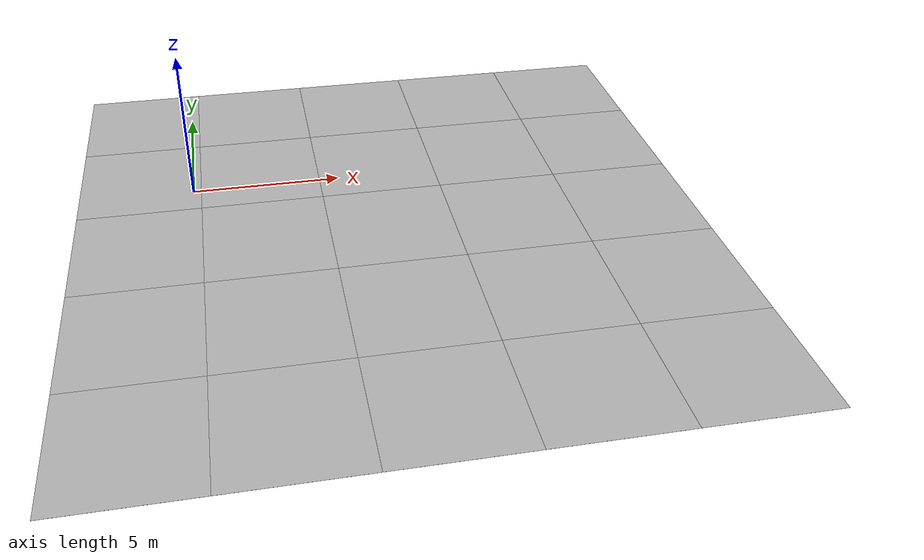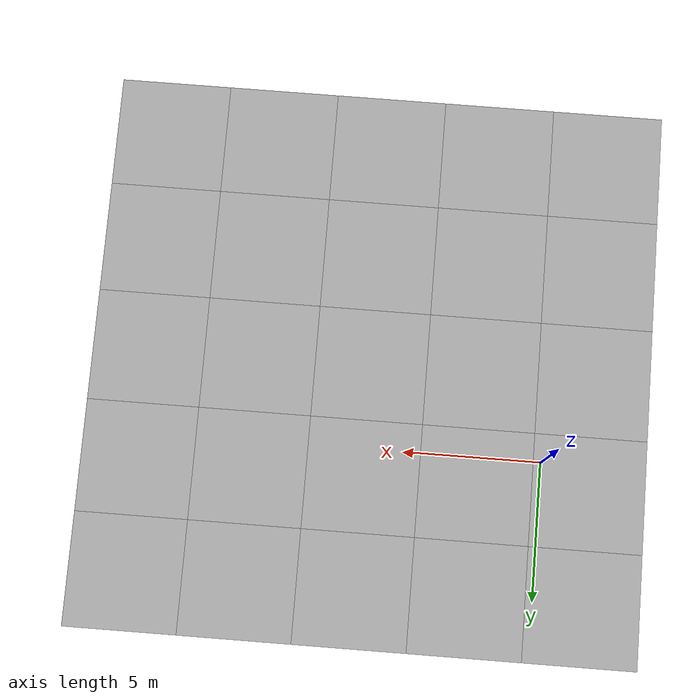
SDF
<sdf version='1.6'><world name='default'>
    <light name='sun_light' type='directional'>
      <pose frame=''>0 0 10 0 -0 0</pose>
      <diffuse>0.5 0.5 0.5 1</diffuse>
      <specular>0.1 0.1 0.1 1</specular>
      <direction>0.1 0.1 -0.9</direction>
      <attenuation>
        <range>20</range>
        <constant>0.5</constant>
        <linear>0.01</linear>
        <quadratic>0.001</quadratic>
      </attenuation>
      <cast_shadows>1</cast_shadows>
    </light>

    <model name='Tile/0-0'>
      <static>1</static>
      <link name='link'>
        <collision name='collision'>
          <geometry>
            <plane>
              <normal>0 0 1</normal>
              <size>4.096 4.096</size>
            </plane>
          </geometry>
          <surface>
            <friction>
              <ode>
                <mu>100</mu>
                <mu2>50</mu2>
              </ode>
              <torsional>
                <ode/>
              </torsional>
            </friction>
            <contact>
              <ode/>
            </contact>
            <bounce/>
          </surface>
          <max_contacts>10</max_contacts>
        </collision>
        <visual name='visual'>
          <cast_shadows>0</cast_shadows>
          <geometry>
            <plane>
              <normal>0 0 1</normal>
              <size>4.096 4.096</size>
            </plane>
          </geometry>
          <material>
            <script>
              <uri>file://materials/scripts</uri>
              <uri>file://materials/textures</uri>
              <name>Tile/072ec27f9ecea70fb9e2486f4bf34065cae6b597642b0c277786eb5cd0bad4e3</name>
            </script>
          </material>
        </visual>
        <self_collide>0</self_collide>
        <enable_wind>0</enable_wind>
        <kinematic>0</kinematic>
      </link>
      <pose frame=''>-1.8000712113637278 -11.307955043852381 0 0 -0 0</pose>
    </model>

    <model name='Tile/0-1'>
      <static>1</static>
      <link name='link'>
        <collision name='collision'>
          <geometry>
            <plane>
              <normal>0 0 1</normal>
              <size>4.096 4.096</size>
            </plane>
          </geometry>
          <surface>
            <friction>
              <ode>
                <mu>100</mu>
                <mu2>50</mu2>
              </ode>
              <torsional>
                <ode/>
              </torsional>
            </friction>
            <contact>
              <ode/>
            </contact>
            <bounce/>
          </surface>
          <max_contacts>10</max_contacts>
        </collision>
        <visual name='visual'>
          <cast_shadows>0</cast_shadows>
          <geometry>
            <plane>
              <normal>0 0 1</normal>
              <size>4.096 4.096</size>
            </plane>
          </geometry>
          <material>
            <script>
              <uri>file://materials/scripts</uri>
              <uri>file://materials/textures</uri>
              <name>Tile/c95d5eb1a1798f0be488606386a763b0e7d9bd78def9d420cb6e8e247f93471b</name>
            </script>
          </material>
        </visual>
        <self_collide>0</self_collide>
        <enable_wind>0</enable_wind>
        <kinematic>0</kinematic>
      </link>
      <pose frame=''>-1.8000712113637278 -7.211955043852381 0 0 -0 0</pose>
    </model>

    <model name='Tile/0-2'>
      <static>1</static>
      <link name='link'>
        <collision name='collision'>
          <geometry>
            <plane>
              <normal>0 0 1</normal>
              <size>4.096 4.096</size>
            </plane>
          </geometry>
          <surface>
            <friction>
              <ode>
                <mu>100</mu>
                <mu2>50</mu2>
              </ode>
              <torsional>
                <ode/>
              </torsional>
            </friction>
            <contact>
              <ode/>
            </contact>
            <bounce/>
          </surface>
          <max_contacts>10</max_contacts>
        </collision>
        <visual name='visual'>
          <cast_shadows>0</cast_shadows>
          <geometry>
            <plane>
              <normal>0 0 1</normal>
              <size>4.096 4.096</size>
            </plane>
          </geometry>
          <material>
            <script>
              <uri>file://materials/scripts</uri>
              <uri>file://materials/textures</uri>
              <name>Tile/5eab350b8220ac9944dbdfa4ac3288c7c17e24c3bf5df0dfcf6173d64dae00a1</name>
            </script>
          </material>
        </visual>
        <self_collide>0</self_collide>
        <enable_wind>0</enable_wind>
        <kinematic>0</kinematic>
      </link>
      <pose frame=''>-1.8000712113637278 -3.115955043852381 0 0 -0 0</pose>
    </model>

    <model name='Tile/0-3'>
      <static>1</static>
      <link name='link'>
        <collision name='collision'>
          <geometry>
            <plane>
              <normal>0 0 1</normal>
              <size>4.096 4.096</size>
            </plane>
          </geometry>
          <surface>
            <friction>
              <ode>
                <mu>100</mu>
                <mu2>50</mu2>
              </ode>
              <torsional>
                <ode/>
              </torsional>
            </friction>
            <contact>
              <ode/>
            </contact>
            <bounce/>
          </surface>
          <max_contacts>10</max_contacts>
        </collision>
        <visual name='visual'>
          <cast_shadows>0</cast_shadows>
          <geometry>
            <plane>
              <normal>0 0 1</normal>
              <size>4.096 4.096</size>
            </plane>
          </geometry>
          <material>
            <script>
              <uri>file://materials/scripts</uri>
              <uri>file://materials/textures</uri>
              <name>Tile/3a7c07fd8b1b702bf43c320c8d46b39815561e968275a6f08376126b703b282c</name>
            </script>
          </material>
        </visual>
        <self_collide>0</self_collide>
        <enable_wind>0</enable_wind>
        <kinematic>0</kinematic>
      </link>
      <pose frame=''>-1.8000712113637278 0.9800449561476192 0 0 -0 0</pose>
    </model>

    <model name='Tile/0-4'>
      <static>1</static>
      <link name='link'>
        <collision name='collision'>
          <geometry>
            <plane>
              <normal>0 0 1</normal>
              <size>4.096 4.096</size>
            </plane>
          </geometry>
          <surface>
            <friction>
              <ode>
                <mu>100</mu>
                <mu2>50</mu2>
              </ode>
              <torsional>
                <ode/>
              </torsional>
            </friction>
            <contact>
              <ode/>
            </contact>
            <bounce/>
          </surface>
          <max_contacts>10</max_contacts>
        </collision>
        <visual name='visual'>
          <cast_shadows>0</cast_shadows>
          <geometry>
            <plane>
              <normal>0 0 1</normal>
              <size>4.096 4.096</size>
            </plane>
          </geometry>
          <material>
            <script>
              <uri>file://materials/scripts</uri>
              <uri>file://materials/textures</uri>
              <name>Tile/5eab350b8220ac9944dbdfa4ac3288c7c17e24c3bf5df0dfcf6173d64dae00a1</name>
            </script>
          </material>
        </visual>
        <self_collide>0</self_collide>
        <enable_wind>0</enable_wind>
        <kinematic>0</kinematic>
      </link>
      <pose frame=''>-1.8000712113637278 5.0760449561476175 0 0 -0 0</pose>
    </model>

    <model name='Tile/1-0'>
      <static>1</static>
      <link name='link'>
        <collision name='collision'>
          <geometry>
            <plane>
              <normal>0 0 1</normal>
              <size>4.096 4.096</size>
            </plane>
          </geometry>
          <surface>
            <friction>
              <ode>
                <mu>100</mu>
                <mu2>50</mu2>
              </ode>
              <torsional>
                <ode/>
              </torsional>
            </friction>
            <contact>
              <ode/>
            </contact>
            <bounce/>
          </surface>
          <max_contacts>10</max_contacts>
        </collision>
        <visual name='visual'>
          <cast_shadows>0</cast_shadows>
          <geometry>
            <plane>
              <normal>0 0 1</normal>
              <size>4.096 4.096</size>
            </plane>
          </geometry>
          <material>
            <script>
              <uri>file://materials/scripts</uri>
              <uri>file://materials/textures</uri>
              <name>Tile/6b7b04169610d046843373cf26475524bd1b7b78969a8e19a1fbe6b6be9aef81</name>
            </script>
          </material>
        </visual>
        <self_collide>0</self_collide>
        <enable_wind>0</enable_wind>
        <kinematic>0</kinematic>
      </link>
      <pose frame=''>2.2959287886362723 -11.307955043852381 0 0 -0 0</pose>
    </model>

    <model name='Tile/1-1'>
      <static>1</static>
      <link name='link'>
        <collision name='collision'>
          <geometry>
            <plane>
              <normal>0 0 1</normal>
              <size>4.096 4.096</size>
            </plane>
          </geometry>
          <surface>
            <friction>
              <ode>
                <mu>100</mu>
                <mu2>50</mu2>
              </ode>
              <torsional>
                <ode/>
              </torsional>
            </friction>
            <contact>
              <ode/>
            </contact>
            <bounce/>
          </surface>
          <max_contacts>10</max_contacts>
        </collision>
        <visual name='visual'>
          <cast_shadows>0</cast_shadows>
          <geometry>
            <plane>
              <normal>0 0 1</normal>
              <size>4.096 4.096</size>
            </plane>
          </geometry>
          <material>
            <script>
              <uri>file://materials/scripts</uri>
              <uri>file://materials/textures</uri>
              <name>Tile/6ddd98cf42c539836bdbbbcb6a709c3cbc42868f0adacc0963ebfb97b51b85fd</name>
            </script>
          </material>
        </visual>
        <self_collide>0</self_collide>
        <enable_wind>0</enable_wind>
        <kinematic>0</kinematic>
      </link>
      <pose frame=''>2.2959287886362723 -7.211955043852381 0 0 -0 0</pose>
    </model>

    <model name='Tile/1-2'>
      <static>1</static>
      <link name='link'>
        <collision name='collision'>
          <geometry>
            <plane>
              <normal>0 0 1</normal>
              <size>4.096 4.096</size>
            </plane>
          </geometry>
          <surface>
            <friction>
              <ode>
                <mu>100</mu>
                <mu2>50</mu2>
              </ode>
              <torsional>
                <ode/>
              </torsional>
            </friction>
            <contact>
              <ode/>
            </contact>
            <bounce/>
          </surface>
          <max_contacts>10</max_contacts>
        </collision>
        <visual name='visual'>
          <cast_shadows>0</cast_shadows>
          <geometry>
            <plane>
              <normal>0 0 1</normal>
              <size>4.096 4.096</size>
            </plane>
          </geometry>
          <material>
            <script>
              <uri>file://materials/scripts</uri>
              <uri>file://materials/textures</uri>
              <name>Tile/2acf6c60863dd42c2a8be9334ebe5687081dbc240b0ca094d049ea6235ca0898</name>
            </script>
          </material>
        </visual>
        <self_collide>0</self_collide>
        <enable_wind>0</enable_wind>
        <kinematic>0</kinematic>
      </link>
      <pose frame=''>2.2959287886362723 -3.115955043852381 0 0 -0 0</pose>
    </model>

    <model name='Tile/1-3'>
      <static>1</static>
      <link name='link'>
        <collision name='collision'>
          <geometry>
            <plane>
              <normal>0 0 1</normal>
              <size>4.096 4.096</size>
            </plane>
          </geometry>
          <surface>
            <friction>
              <ode>
                <mu>100</mu>
                <mu2>50</mu2>
              </ode>
              <torsional>
                <ode/>
              </torsional>
            </friction>
            <contact>
              <ode/>
            </contact>
            <bounce/>
          </surface>
          <max_contacts>10</max_contacts>
        </collision>
        <visual name='visual'>
          <cast_shadows>0</cast_shadows>
          <geometry>
            <plane>
              <normal>0 0 1</normal>
              <size>4.096 4.096</size>
            </plane>
          </geometry>
          <material>
            <script>
              <uri>file://materials/scripts</uri>
              <uri>file://materials/textures</uri>
              <name>Tile/250c611df57e875cb2aa1c5bec24966ed7160cc04164ff5ce2abaedcc58d7f48</name>
            </script>
          </material>
        </visual>
        <self_collide>0</self_collide>
        <enable_wind>0</enable_wind>
        <kinematic>0</kinematic>
      </link>
      <pose frame=''>2.2959287886362723 0.9800449561476192 0 0 -0 0</pose>
    </model>

    <model name='Tile/1-4'>
      <static>1</static>
      <link name='link'>
        <collision name='collision'>
          <geometry>
            <plane>
              <normal>0 0 1</normal>
              <size>4.096 4.096</size>
            </plane>
          </geometry>
          <surface>
            <friction>
              <ode>
                <mu>100</mu>
                <mu2>50</mu2>
              </ode>
              <torsional>
                <ode/>
              </torsional>
            </friction>
            <contact>
              <ode/>
            </contact>
            <bounce/>
          </surface>
          <max_contacts>10</max_contacts>
        </collision>
        <visual name='visual'>
          <cast_shadows>0</cast_shadows>
          <geometry>
            <plane>
              <normal>0 0 1</normal>
              <size>4.096 4.096</size>
            </plane>
          </geometry>
          <material>
            <script>
              <uri>file://materials/scripts</uri>
              <uri>file://materials/textures</uri>
              <name>Tile/5eab350b8220ac9944dbdfa4ac3288c7c17e24c3bf5df0dfcf6173d64dae00a1</name>
            </script>
          </material>
        </visual>
        <self_collide>0</self_collide>
        <enable_wind>0</enable_wind>
        <kinematic>0</kinematic>
      </link>
      <pose frame=''>2.2959287886362723 5.0760449561476175 0 0 -0 0</pose>
    </model>

    <model name='Tile/2-0'>
      <static>1</static>
      <link name='link'>
        <collision name='collision'>
          <geometry>
            <plane>
              <normal>0 0 1</normal>
              <size>4.096 4.096</size>
            </plane>
          </geometry>
          <surface>
            <friction>
              <ode>
                <mu>100</mu>
                <mu2>50</mu2>
              </ode>
              <torsional>
                <ode/>
              </torsional>
            </friction>
            <contact>
              <ode/>
            </contact>
            <bounce/>
          </surface>
          <max_contacts>10</max_contacts>
        </collision>
        <visual name='visual'>
          <cast_shadows>0</cast_shadows>
          <geometry>
            <plane>
              <normal>0 0 1</normal>
              <size>4.096 4.096</size>
            </plane>
          </geometry>
          <material>
            <script>
              <uri>file://materials/scripts</uri>
              <uri>file://materials/textures</uri>
              <name>Tile/5eab350b8220ac9944dbdfa4ac3288c7c17e24c3bf5df0dfcf6173d64dae00a1</name>
            </script>
          </material>
        </visual>
        <self_collide>0</self_collide>
        <enable_wind>0</enable_wind>
        <kinematic>0</kinematic>
      </link>
      <pose frame=''>6.391928788636273 -11.307955043852381 0 0 -0 0</pose>
    </model>

    <model name='Tile/2-1'>
      <static>1</static>
      <link name='link'>
        <collision name='collision'>
          <geometry>
            <plane>
              <normal>0 0 1</normal>
              <size>4.096 4.096</size>
            </plane>
          </geometry>
          <surface>
            <friction>
              <ode>
                <mu>100</mu>
                <mu2>50</mu2>
              </ode>
              <torsional>
                <ode/>
              </torsional>
            </friction>
            <contact>
              <ode/>
            </contact>
            <bounce/>
          </surface>
          <max_contacts>10</max_contacts>
        </collision>
        <visual name='visual'>
          <cast_shadows>0</cast_shadows>
          <geometry>
            <plane>
              <normal>0 0 1</normal>
              <size>4.096 4.096</size>
            </plane>
          </geometry>
          <material>
            <script>
              <uri>file://materials/scripts</uri>
              <uri>file://materials/textures</uri>
              <name>Tile/fcdb32dc7b289d23e9188b8af5454dce1addc74b1884397d67e66c1f9bb37296</name>
            </script>
          </material>
        </visual>
        <self_collide>0</self_collide>
        <enable_wind>0</enable_wind>
        <kinematic>0</kinematic>
      </link>
      <pose frame=''>6.391928788636273 -7.211955043852381 0 0 -0 0</pose>
    </model>

    <model name='Tile/2-2'>
      <static>1</static>
      <link name='link'>
        <collision name='collision'>
          <geometry>
            <plane>
              <normal>0 0 1</normal>
              <size>4.096 4.096</size>
            </plane>
          </geometry>
          <surface>
            <friction>
              <ode>
                <mu>100</mu>
                <mu2>50</mu2>
              </ode>
              <torsional>
                <ode/>
              </torsional>
            </friction>
            <contact>
              <ode/>
            </contact>
            <bounce/>
          </surface>
          <max_contacts>10</max_contacts>
        </collision>
        <visual name='visual'>
          <cast_shadows>0</cast_shadows>
          <geometry>
            <plane>
              <normal>0 0 1</normal>
              <size>4.096 4.096</size>
            </plane>
          </geometry>
          <material>
            <script>
              <uri>file://materials/scripts</uri>
              <uri>file://materials/textures</uri>
              <name>Tile/bfa07c493a48ce49dfbb9dbe514d026b4dfb2b507d5f00aca3e34ab1c537a851</name>
            </script>
          </material>
        </visual>
        <self_collide>0</self_collide>
        <enable_wind>0</enable_wind>
        <kinematic>0</kinematic>
      </link>
      <pose frame=''>6.391928788636273 -3.115955043852381 0 0 -0 0</pose>
    </model>

    <model name='Tile/2-3'>
      <static>1</static>
      <link name='link'>
        <collision name='collision'>
          <geometry>
            <plane>
              <normal>0 0 1</normal>
              <size>4.096 4.096</size>
            </plane>
          </geometry>
          <surface>
            <friction>
              <ode>
                <mu>100</mu>
                <mu2>50</mu2>
              </ode>
              <torsional>
                <ode/>
              </torsional>
            </friction>
            <contact>
              <ode/>
            </contact>
            <bounce/>
          </surface>
          <max_contacts>10</max_contacts>
        </collision>
        <visual name='visual'>
          <cast_shadows>0</cast_shadows>
          <geometry>
            <plane>
              <normal>0 0 1</normal>
              <size>4.096 4.096</size>
            </plane>
          </geometry>
          <material>
            <script>
              <uri>file://materials/scripts</uri>
              <uri>file://materials/textures</uri>
              <name>Tile/5eab350b8220ac9944dbdfa4ac3288c7c17e24c3bf5df0dfcf6173d64dae00a1</name>
            </script>
          </material>
        </visual>
        <self_collide>0</self_collide>
        <enable_wind>0</enable_wind>
        <kinematic>0</kinematic>
      </link>
      <pose frame=''>6.391928788636273 0.9800449561476192 0 0 -0 0</pose>
    </model>

    <model name='Tile/2-4'>
      <static>1</static>
      <link name='link'>
        <collision name='collision'>
          <geometry>
            <plane>
              <normal>0 0 1</normal>
              <size>4.096 4.096</size>
            </plane>
          </geometry>
          <surface>
            <friction>
              <ode>
                <mu>100</mu>
                <mu2>50</mu2>
              </ode>
              <torsional>
                <ode/>
              </torsional>
            </friction>
            <contact>
              <ode/>
            </contact>
            <bounce/>
          </surface>
          <max_contacts>10</max_contacts>
        </collision>
        <visual name='visual'>
          <cast_shadows>0</cast_shadows>
          <geometry>
            <plane>
              <normal>0 0 1</normal>
              <size>4.096 4.096</size>
            </plane>
          </geometry>
          <material>
            <script>
              <uri>file://materials/scripts</uri>
              <uri>file://materials/textures</uri>
              <name>Tile/5eab350b8220ac9944dbdfa4ac3288c7c17e24c3bf5df0dfcf6173d64dae00a1</name>
            </script>
          </material>
        </visual>
        <self_collide>0</self_collide>
        <enable_wind>0</enable_wind>
        <kinematic>0</kinematic>
      </link>
      <pose frame=''>6.391928788636273 5.0760449561476175 0 0 -0 0</pose>
    </model>

    <model name='Tile/3-0'>
      <static>1</static>
      <link name='link'>
        <collision name='collision'>
          <geometry>
            <plane>
              <normal>0 0 1</normal>
              <size>4.096 4.096</size>
            </plane>
          </geometry>
          <surface>
            <friction>
              <ode>
                <mu>100</mu>
                <mu2>50</mu2>
              </ode>
              <torsional>
                <ode/>
              </torsional>
            </friction>
            <contact>
              <ode/>
            </contact>
            <bounce/>
          </surface>
          <max_contacts>10</max_contacts>
        </collision>
        <visual name='visual'>
          <cast_shadows>0</cast_shadows>
          <geometry>
            <plane>
              <normal>0 0 1</normal>
              <size>4.096 4.096</size>
            </plane>
          </geometry>
          <material>
            <script>
              <uri>file://materials/scripts</uri>
              <uri>file://materials/textures</uri>
              <name>Tile/5eab350b8220ac9944dbdfa4ac3288c7c17e24c3bf5df0dfcf6173d64dae00a1</name>
            </script>
          </material>
        </visual>
        <self_collide>0</self_collide>
        <enable_wind>0</enable_wind>
        <kinematic>0</kinematic>
      </link>
      <pose frame=''>10.487928788636273 -11.307955043852381 0 0 -0 0</pose>
    </model>

    <model name='Tile/3-1'>
      <static>1</static>
      <link name='link'>
        <collision name='collision'>
          <geometry>
            <plane>
              <normal>0 0 1</normal>
              <size>4.096 4.096</size>
            </plane>
          </geometry>
          <surface>
            <friction>
              <ode>
                <mu>100</mu>
                <mu2>50</mu2>
              </ode>
              <torsional>
                <ode/>
              </torsional>
            </friction>
            <contact>
              <ode/>
            </contact>
            <bounce/>
          </surface>
          <max_contacts>10</max_contacts>
        </collision>
        <visual name='visual'>
          <cast_shadows>0</cast_shadows>
          <geometry>
            <plane>
              <normal>0 0 1</normal>
              <size>4.096 4.096</size>
            </plane>
          </geometry>
          <material>
            <script>
              <uri>file://materials/scripts</uri>
              <uri>file://materials/textures</uri>
              <name>Tile/af4b180c03bfddc4beba77e1316b0d92dae5f35f7c55f3bab908a91573810bbf</name>
            </script>
          </material>
        </visual>
        <self_collide>0</self_collide>
        <enable_wind>0</enable_wind>
        <kinematic>0</kinematic>
      </link>
      <pose frame=''>10.487928788636273 -7.211955043852381 0 0 -0 0</pose>
    </model>

    <model name='Tile/3-2'>
      <static>1</static>
      <link name='link'>
        <collision name='collision'>
          <geometry>
            <plane>
              <normal>0 0 1</normal>
              <size>4.096 4.096</size>
            </plane>
          </geometry>
          <surface>
            <friction>
              <ode>
                <mu>100</mu>
                <mu2>50</mu2>
              </ode>
              <torsional>
                <ode/>
              </torsional>
            </friction>
            <contact>
              <ode/>
            </contact>
            <bounce/>
          </surface>
          <max_contacts>10</max_contacts>
        </collision>
        <visual name='visual'>
          <cast_shadows>0</cast_shadows>
          <geometry>
            <plane>
              <normal>0 0 1</normal>
              <size>4.096 4.096</size>
            </plane>
          </geometry>
          <material>
            <script>
              <uri>file://materials/scripts</uri>
              <uri>file://materials/textures</uri>
              <name>Tile/ff797563b60ef048d73f6d1be125db70e7f2db834698f0a68f245a350967c6cd</name>
            </script>
          </material>
        </visual>
        <self_collide>0</self_collide>
        <enable_wind>0</enable_wind>
        <kinematic>0</kinematic>
      </link>
      <pose frame=''>10.487928788636273 -3.115955043852381 0 0 -0 0</pose>
    </model>

    <model name='Tile/3-3'>
      <static>1</static>
      <link name='link'>
        <collision name='collision'>
          <geometry>
            <plane>
              <normal>0 0 1</normal>
              <size>4.096 4.096</size>
            </plane>
          </geometry>
          <surface>
            <friction>
              <ode>
                <mu>100</mu>
                <mu2>50</mu2>
              </ode>
              <torsional>
                <ode/>
              </torsional>
            </friction>
            <contact>
              <ode/>
            </contact>
            <bounce/>
          </surface>
          <max_contacts>10</max_contacts>
        </collision>
        <visual name='visual'>
          <cast_shadows>0</cast_shadows>
          <geometry>
            <plane>
              <normal>0 0 1</normal>
              <size>4.096 4.096</size>
            </plane>
          </geometry>
          <material>
            <script>
              <uri>file://materials/scripts</uri>
              <uri>file://materials/textures</uri>
              <name>Tile/5eab350b8220ac9944dbdfa4ac3288c7c17e24c3bf5df0dfcf6173d64dae00a1</name>
            </script>
          </material>
        </visual>
        <self_collide>0</self_collide>
        <enable_wind>0</enable_wind>
        <kinematic>0</kinematic>
      </link>
      <pose frame=''>10.487928788636273 0.9800449561476192 0 0 -0 0</pose>
    </model>

    <model name='Tile/3-4'>
      <static>1</static>
      <link name='link'>
        <collision name='collision'>
          <geometry>
            <plane>
              <normal>0 0 1</normal>
              <size>4.096 4.096</size>
            </plane>
          </geometry>
          <surface>
            <friction>
              <ode>
                <mu>100</mu>
                <mu2>50</mu2>
              </ode>
              <torsional>
                <ode/>
              </torsional>
            </friction>
            <contact>
              <ode/>
            </contact>
            <bounce/>
          </surface>
          <max_contacts>10</max_contacts>
        </collision>
        <visual name='visual'>
          <cast_shadows>0</cast_shadows>
          <geometry>
            <plane>
              <normal>0 0 1</normal>
              <size>4.096 4.096</size>
            </plane>
          </geometry>
          <material>
            <script>
              <uri>file://materials/scripts</uri>
              <uri>file://materials/textures</uri>
              <name>Tile/5eab350b8220ac9944dbdfa4ac3288c7c17e24c3bf5df0dfcf6173d64dae00a1</name>
            </script>
          </material>
        </visual>
        <self_collide>0</self_collide>
        <enable_wind>0</enable_wind>
        <kinematic>0</kinematic>
      </link>
      <pose frame=''>10.487928788636273 5.0760449561476175 0 0 -0 0</pose>
    </model>

    <model name='Tile/4-0'>
      <static>1</static>
      <link name='link'>
        <collision name='collision'>
          <geometry>
            <plane>
              <normal>0 0 1</normal>
              <size>4.096 4.096</size>
            </plane>
          </geometry>
          <surface>
            <friction>
              <ode>
                <mu>100</mu>
                <mu2>50</mu2>
              </ode>
              <torsional>
                <ode/>
              </torsional>
            </friction>
            <contact>
              <ode/>
            </contact>
            <bounce/>
          </surface>
          <max_contacts>10</max_contacts>
        </collision>
        <visual name='visual'>
          <cast_shadows>0</cast_shadows>
          <geometry>
            <plane>
              <normal>0 0 1</normal>
              <size>4.096 4.096</size>
            </plane>
          </geometry>
          <material>
            <script>
              <uri>file://materials/scripts</uri>
              <uri>file://materials/textures</uri>
              <name>Tile/5eab350b8220ac9944dbdfa4ac3288c7c17e24c3bf5df0dfcf6173d64dae00a1</name>
            </script>
          </material>
        </visual>
        <self_collide>0</self_collide>
        <enable_wind>0</enable_wind>
        <kinematic>0</kinematic>
      </link>
      <pose frame=''>14.583928788636271 -11.307955043852381 0 0 -0 0</pose>
    </model>

    <model name='Tile/4-1'>
      <static>1</static>
      <link name='link'>
        <collision name='collision'>
          <geometry>
            <plane>
              <normal>0 0 1</normal>
              <size>4.096 4.096</size>
            </plane>
          </geometry>
          <surface>
            <friction>
              <ode>
                <mu>100</mu>
                <mu2>50</mu2>
              </ode>
              <torsional>
                <ode/>
              </torsional>
            </friction>
            <contact>
              <ode/>
            </contact>
            <bounce/>
          </surface>
          <max_contacts>10</max_contacts>
        </collision>
        <visual name='visual'>
          <cast_shadows>0</cast_shadows>
          <geometry>
            <plane>
              <normal>0 0 1</normal>
              <size>4.096 4.096</size>
            </plane>
          </geometry>
          <material>
            <script>
              <uri>file://materials/scripts</uri>
              <uri>file://materials/textures</uri>
              <name>Tile/5eab350b8220ac9944dbdfa4ac3288c7c17e24c3bf5df0dfcf6173d64dae00a1</name>
            </script>
          </material>
        </visual>
        <self_collide>0</self_collide>
        <enable_wind>0</enable_wind>
        <kinematic>0</kinematic>
      </link>
      <pose frame=''>14.583928788636271 -7.211955043852381 0 0 -0 0</pose>
    </model>

    <model name='Tile/4-2'>
      <static>1</static>
      <link name='link'>
        <collision name='collision'>
          <geometry>
            <plane>
              <normal>0 0 1</normal>
              <size>4.096 4.096</size>
            </plane>
          </geometry>
          <surface>
            <friction>
              <ode>
                <mu>100</mu>
                <mu2>50</mu2>
              </ode>
              <torsional>
                <ode/>
              </torsional>
            </friction>
            <contact>
              <ode/>
            </contact>
            <bounce/>
          </surface>
          <max_contacts>10</max_contacts>
        </collision>
        <visual name='visual'>
          <cast_shadows>0</cast_shadows>
          <geometry>
            <plane>
              <normal>0 0 1</normal>
              <size>4.096 4.096</size>
            </plane>
          </geometry>
          <material>
            <script>
              <uri>file://materials/scripts</uri>
              <uri>file://materials/textures</uri>
              <name>Tile/5eab350b8220ac9944dbdfa4ac3288c7c17e24c3bf5df0dfcf6173d64dae00a1</name>
            </script>
          </material>
        </visual>
        <self_collide>0</self_collide>
        <enable_wind>0</enable_wind>
        <kinematic>0</kinematic>
      </link>
      <pose frame=''>14.583928788636271 -3.115955043852381 0 0 -0 0</pose>
    </model>

    <model name='Tile/4-3'>
      <static>1</static>
      <link name='link'>
        <collision name='collision'>
          <geometry>
            <plane>
              <normal>0 0 1</normal>
              <size>4.096 4.096</size>
            </plane>
          </geometry>
          <surface>
            <friction>
              <ode>
                <mu>100</mu>
                <mu2>50</mu2>
              </ode>
              <torsional>
                <ode/>
              </torsional>
            </friction>
            <contact>
              <ode/>
            </contact>
            <bounce/>
          </surface>
          <max_contacts>10</max_contacts>
        </collision>
        <visual name='visual'>
          <cast_shadows>0</cast_shadows>
          <geometry>
            <plane>
              <normal>0 0 1</normal>
              <size>4.096 4.096</size>
            </plane>
          </geometry>
          <material>
            <script>
              <uri>file://materials/scripts</uri>
              <uri>file://materials/textures</uri>
              <name>Tile/5eab350b8220ac9944dbdfa4ac3288c7c17e24c3bf5df0dfcf6173d64dae00a1</name>
            </script>
          </material>
        </visual>
        <self_collide>0</self_collide>
        <enable_wind>0</enable_wind>
        <kinematic>0</kinematic>
      </link>
      <pose frame=''>14.583928788636271 0.9800449561476192 0 0 -0 0</pose>
    </model>

    <model name='Tile/4-4'>
      <static>1</static>
      <link name='link'>
        <collision name='collision'>
          <geometry>
            <plane>
              <normal>0 0 1</normal>
              <size>4.096 4.096</size>
            </plane>
          </geometry>
          <surface>
            <friction>
              <ode>
                <mu>100</mu>
                <mu2>50</mu2>
              </ode>
              <torsional>
                <ode/>
              </torsional>
            </friction>
            <contact>
              <ode/>
            </contact>
            <bounce/>
          </surface>
          <max_contacts>10</max_contacts>
        </collision>
        <visual name='visual'>
          <cast_shadows>0</cast_shadows>
          <geometry>
            <plane>
              <normal>0 0 1</normal>
              <size>4.096 4.096</size>
            </plane>
          </geometry>
          <material>
            <script>
              <uri>file://materials/scripts</uri>
              <uri>file://materials/textures</uri>
              <name>Tile/5eab350b8220ac9944dbdfa4ac3288c7c17e24c3bf5df0dfcf6173d64dae00a1</name>
            </script>
          </material>
        </visual>
        <self_collide>0</self_collide>
        <enable_wind>0</enable_wind>
        <kinematic>0</kinematic>
      </link>
      <pose frame=''>14.583928788636271 5.0760449561476175 0 0 -0 0</pose>
    </model>
    </world></sdf>
